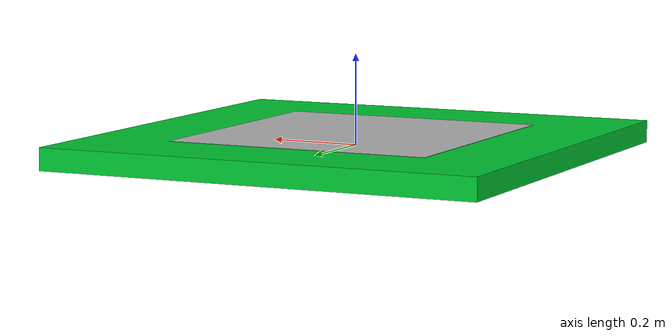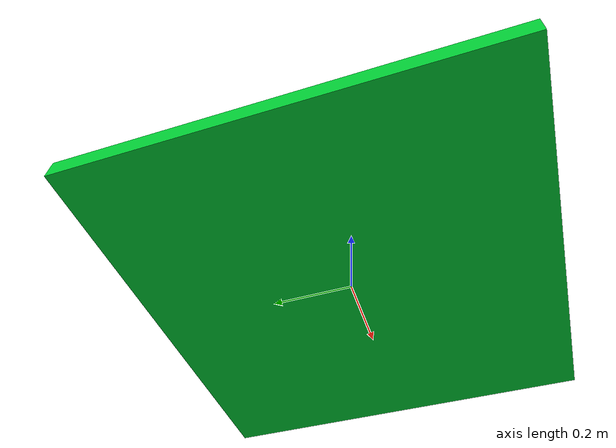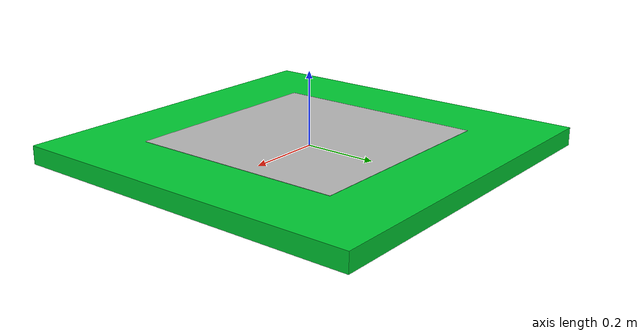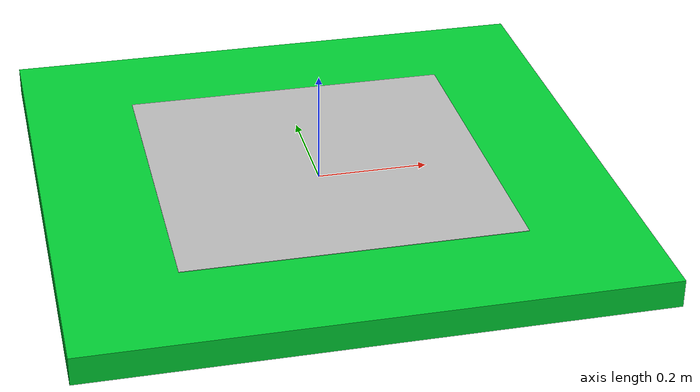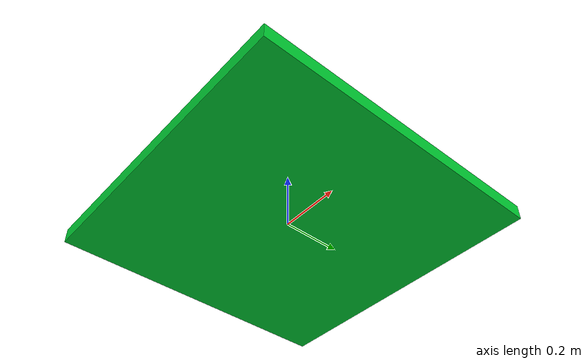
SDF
<?xml version="1.0"?>
<sdf version="1.6">
  <model name="aruco_platform">
    <static>false</static>

    <link name="platform_base">
      <inertial>
        <mass>50.0</mass>
        <inertia>
          <ixx>4.17</ixx><iyy>4.17</iyy><izz>8.33</izz>
          <ixy>0</ixy><ixz>0</ixz><iyz>0</iyz>
        </inertia>
      </inertial>

      <!-- Green platform body -->
      <visual name="body">
        <pose>0 0 0 0 0 0</pose>
        <geometry><box><size>1.0 1.0 0.05</size></box></geometry>
        <material>
          <ambient>0.0 0.7 0.1 1</ambient>
          <diffuse>0.0 0.8 0.2 1</diffuse>
        </material>
      </visual>

      <!-- ArUco marker face on top -->
      <visual name="aruco_marker">
        <pose>0 0 0.026 0 0 0</pose>
        <geometry><box><size>0.6 0.6 0.001</size></box></geometry>
        <material>
          <script>
            <uri>model://aruco_platform/marker_material.material</uri>
            <name>ArUcoMarker</name>
          </script>
        </material>
      </visual>

      <collision name="collision">
        <geometry><box><size>1.0 1.0 0.05</size></box></geometry>
        <surface>
          <contact><ode/></contact>
          <friction><ode><mu>1</mu><mu2>1</mu2></ode></friction>
        </surface>
      </collision>
    </link>

    <!-- Planar move plugin -->
    <plugin name="platform_move" filename="libgazebo_ros_planar_move.so">
      <ros>
        <namespace>platform</namespace>
        <remapping>cmd_vel:=cmd_vel</remapping>
        <remapping>odom:=odom</remapping>
      </ros>
      <update_rate>100</update_rate>
      <publish_rate>20</publish_rate>
      <publish_odom>true</publish_odom>
      <publish_odom_tf>true</publish_odom_tf>
      <odometry_frame>odom</odometry_frame>
      <robot_base_frame>platform_base</robot_base_frame>
    </plugin>

  </model>
</sdf>
